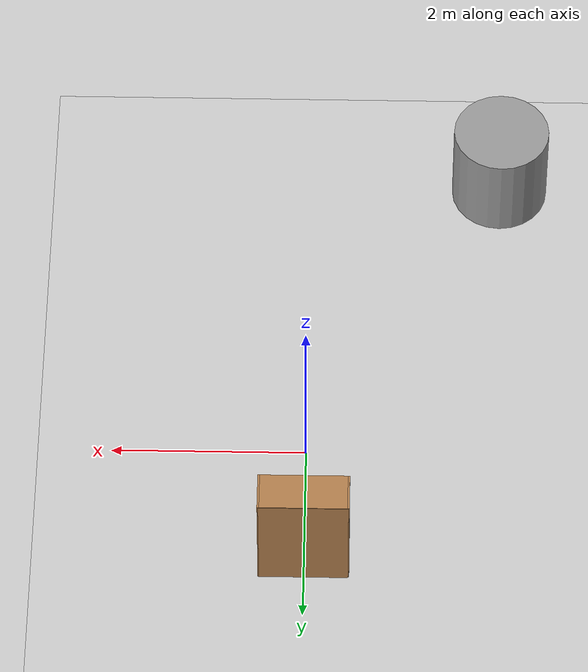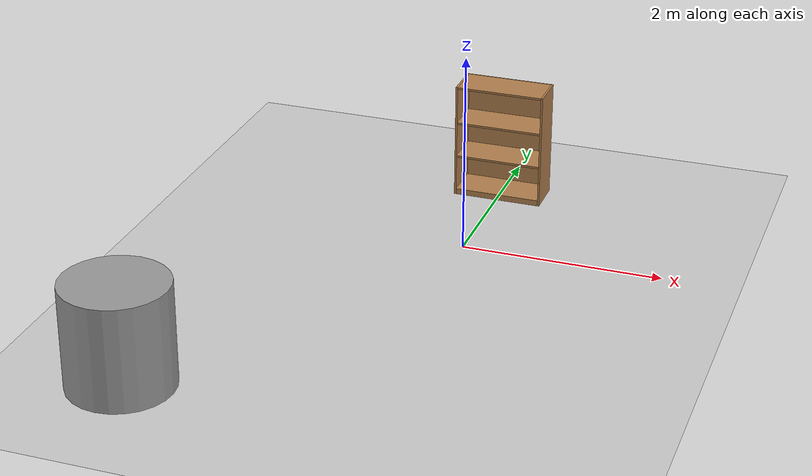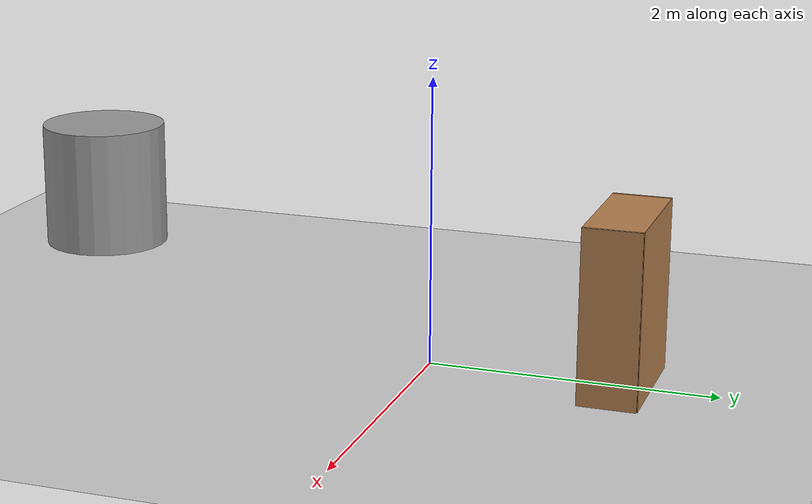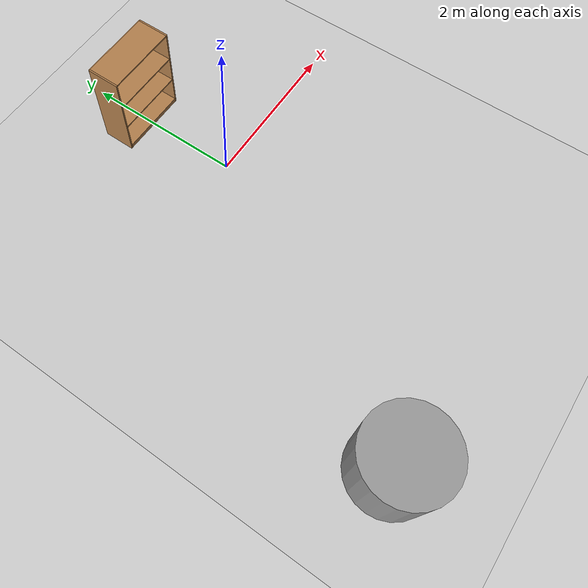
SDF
<sdf version="1.4">
 <world name="default">
  <physics type="ode">
   <gravity>0 0 -9.81</gravity>
   <ode>
    <solver><type>quick</type><iters>50</iters><sor>1.4</sor></solver>
    <constraints>
     <cfm>0.0</cfm>
     <erp>0.2</erp>
     <contact_max_correcting_vel>100.0</contact_max_correcting_vel>
     <contact_surface_layer>0.0</contact_surface_layer>
    </constraints>
   </ode>
   <real_time_update_rate>1000.0</real_time_update_rate>
   <max_step_size>0.001</max_step_size>
  </physics>
  <include><uri>model://sun</uri></include>
  <include><uri>model://ground_plane</uri></include>
  <model name="bookshelf">
   <static>1</static>
   <link name="link">
    <inertial><mass>1</mass></inertial>
    <collision name="back">
     <pose>0 0.005 0.6 0 -0 0</pose>
     <geometry><box><size>0.9 0.01 1.2</size></box></geometry>
    </collision>
    <visual name="visual1">
     <pose>0 0.005 0.6 0 -0 0</pose>
     <geometry><box><size>0.9 0.01 1.2</size></box></geometry>
     <material>
      <script><uri>file://media/materials/scripts/gazebo.material</uri><name>Gazebo/Wood</name></script>
     </material>
    </visual>
    <collision name="left_side">
     <pose>0.45 -0.195 0.6 0 -0 0</pose>
     <geometry><box><size>0.02 0.4 1.2</size></box></geometry>
    </collision>
    <visual name="visual2">
     <pose>0.45 -0.195 0.6 0 -0 0</pose>
     <geometry><box><size>0.02 0.4 1.2</size></box></geometry>
     <material>
      <script><uri>file://media/materials/scripts/gazebo.material</uri><name>Gazebo/Wood</name></script>
     </material>
    </visual>
    <collision name="right_side">
     <pose>-0.45 -0.195 0.6 0 -0 0</pose>
     <geometry><box><size>0.02 0.4 1.2</size></box></geometry>
    </collision>
    <visual name="visual3">
     <pose>-0.45 -0.195 0.6 0 -0 0</pose>
     <geometry><box><size>0.02 0.4 1.2</size></box></geometry>
     <material>
      <script><uri>file://media/materials/scripts/gazebo.material</uri><name>Gazebo/Wood</name></script>
     </material>
    </visual>
    <collision name="bottom">
     <pose>0 -0.195 0.03 0 -0 0</pose>
     <geometry><box><size>0.88 0.4 0.06</size></box></geometry>
    </collision>
    <visual name="visual4">
     <pose>0 -0.195 0.03 0 -0 0</pose>
     <geometry><box><size>0.88 0.4 0.06</size></box></geometry>
     <material>
      <script><uri>file://media/materials/scripts/gazebo.material</uri><name>Gazebo/Wood</name></script>
     </material>
    </visual>
    <collision name="top">
     <pose>0 -0.195 1.19 0 -0 0</pose>
     <geometry><box><size>0.88 0.4 0.02</size></box></geometry>
    </collision>
    <visual name="visual5">
     <pose>0 -0.195 1.19 0 -0 0</pose>
     <geometry><box><size>0.88 0.4 0.02</size></box></geometry>
     <material>
      <script><uri>file://media/materials/scripts/gazebo.material</uri><name>Gazebo/Wood</name></script>
     </material>
    </visual>
    <collision name="low_shelf">
     <pose>0 -0.195 0.43 0 -0 0</pose>
     <geometry><box><size>0.88 0.4 0.02</size></box></geometry>
    </collision>
    <visual name="visual6">
     <pose>0 -0.195 0.43 0 -0 0</pose>
     <geometry><box><size>0.88 0.4 0.02</size></box></geometry>
     <material>
      <script><uri>file://media/materials/scripts/gazebo.material</uri><name>Gazebo/Wood</name></script>
     </material>
    </visual>
    <collision name="high_shelf">
     <pose>0 -0.195 0.8 0 -0 0</pose>
     <geometry><box><size>0.88 0.4 0.02</size></box></geometry>
    </collision>
    <visual name="visual7">
     <pose>0 -0.195 0.8 0 -0 0</pose>
     <geometry><box><size>0.88 0.4 0.02</size></box></geometry>
     <material>
      <script><uri>file://media/materials/scripts/gazebo.material</uri><name>Gazebo/Wood</name></script>
     </material>
    </visual>
    <velocity_decay><linear>0</linear><angular>0</angular></velocity_decay>
   </link>
   <pose>0 1.53026 0 0 -0 0</pose>
  </model>
  <model name="unit_cylinder_1">
   <pose>-2 -3.4888 0.5 0 -0 0</pose>
   <link name="link">
    <inertial>
     <mass>1</mass>
     <inertia><ixx>1</ixx><ixy>0</ixy><ixz>0</ixz><iyy>1</iyy><iyz>0</iyz><izz>1</izz></inertia>
    </inertial>
    <collision name="collision">
     <geometry><cylinder><radius>0.5</radius><length>1</length></cylinder></geometry>
    </collision>
    <visual name="visual">
     <geometry><cylinder><radius>0.5</radius><length>1</length></cylinder></geometry>
     <material>
      <script><uri>file://media/materials/scripts/gazebo.material</uri><name>Gazebo/Grey</name></script>
     </material>
    </visual>
    <velocity_decay><linear>0</linear><angular>0</angular></velocity_decay>
   </link>
   <static>0</static>
  </model>
 </world>
</sdf>
